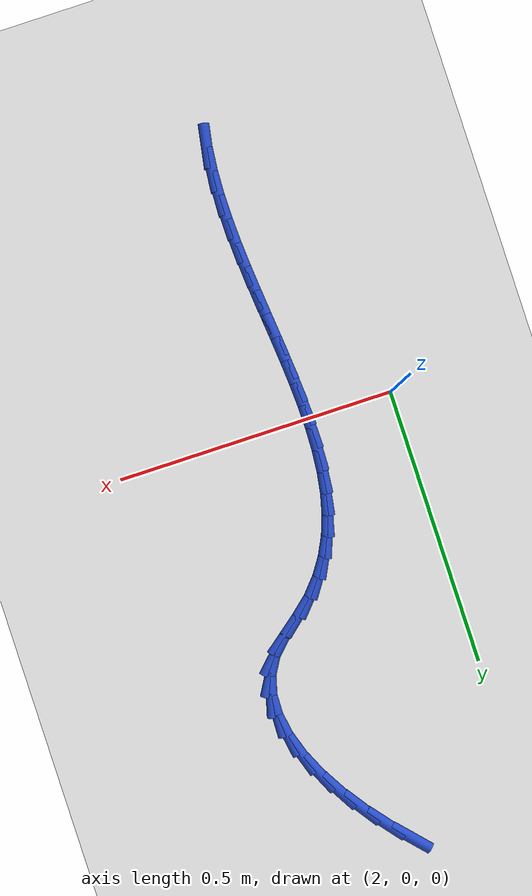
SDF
<sdf version="1.6">
 <world name="default">
  <model name="ground_plane">
   <static>1</static>
   <link name="link">
    <collision name="collision">
     <geometry><plane><normal>0 0 1</normal><size>100 100</size></plane></geometry>
     <surface><friction><ode><mu>100</mu><mu2>50</mu2></ode></friction></surface>
    </collision>
    <visual name="visual">
     <cast_shadows>0</cast_shadows>
     <geometry><plane><normal>0 0 1</normal><size>100 100</size></plane></geometry>
     <material>
      <script><uri>file://media/materials/scripts/gazebo.material</uri><name>Gazebo/WhiteGlow</name></script>
     </material>
    </visual>
   </link>
  </model>
  <model name="line">
   <link name="link_85">
    <pose>2.2092725047235064 0.756546341222975 0.01 0 1.57 -0.8277808865502475</pose>
    <collision name="collision">
     <geometry><cylinder><radius>0.01</radius><length>0.08</length></cylinder></geometry>
    </collision>
    <visual name="visual">
     <material>
      <script><name>Gazebo/Blue</name><uri>file://media/materials/scripts/gazebo.material</uri></script>
     </material>
     <geometry><cylinder><radius>0.01</radius><length>0.08</length></cylinder></geometry>
    </visual>
   </link>
   <link name="link_86">
    <pose>2.243832664617129 0.7189251040761271 0.01 0 1.57 -0.8912576350863156</pose>
    <collision name="collision">
     <geometry><cylinder><radius>0.01</radius><length>0.08</length></cylinder></geometry>
    </collision>
    <visual name="visual">
     <material>
      <script><name>Gazebo/Blue</name><uri>file://media/materials/scripts/gazebo.material</uri></script>
     </material>
     <geometry><cylinder><radius>0.01</radius><length>0.08</length></cylinder></geometry>
    </visual>
   </link>
   <link name="link_87">
    <pose>2.275601329192552 0.6796025193183581 0.01 0 1.57 -0.9612634005826799</pose>
    <collision name="collision">
     <geometry><cylinder><radius>0.01</radius><length>0.08</length></cylinder></geometry>
    </collision>
    <visual name="visual">
     <material>
      <script><name>Gazebo/Blue</name><uri>file://media/materials/scripts/gazebo.material</uri></script>
     </material>
     <geometry><cylinder><radius>0.01</radius><length>0.08</length></cylinder></geometry>
    </visual>
   </link>
   <link name="link_88">
    <pose>2.3038162476772017 0.6391929597491826 0.01 0 1.57 -1.0417917243754642</pose>
    <collision name="collision">
     <geometry><cylinder><radius>0.01</radius><length>0.08</length></cylinder></geometry>
    </collision>
    <visual name="visual">
     <material>
      <script><name>Gazebo/Blue</name><uri>file://media/materials/scripts/gazebo.material</uri></script>
     </material>
     <geometry><cylinder><radius>0.01</radius><length>0.08</length></cylinder></geometry>
    </visual>
   </link>
   <link name="link_89">
    <pose>2.327715169298507 0.5983107981681148 0.01 0 1.57 -1.1380361781038197</pose>
    <collision name="collision">
     <geometry><cylinder><radius>0.01</radius><length>0.08</length></cylinder></geometry>
    </collision>
    <visual name="visual">
     <material>
      <script><name>Gazebo/Blue</name><uri>file://media/materials/scripts/gazebo.material</uri></script>
     </material>
     <geometry><cylinder><radius>0.01</radius><length>0.08</length></cylinder></geometry>
    </visual>
   </link>
   <link name="link_90">
    <pose>2.3465358432838954 0.5575704073746695 0.01 0 1.57 -1.2568970935866333</pose>
    <collision name="collision">
     <geometry><cylinder><radius>0.01</radius><length>0.08</length></cylinder></geometry>
    </collision>
    <visual name="visual">
     <material>
      <script><name>Gazebo/Blue</name><uri>file://media/materials/scripts/gazebo.material</uri></script>
     </material>
     <geometry><cylinder><radius>0.01</radius><length>0.08</length></cylinder></geometry>
    </visual>
   </link>
   <link name="link_91">
    <pose>2.359516018860796 0.5175861601683609 0.01 0 1.57 -1.4071143908361616</pose>
    <collision name="collision">
     <geometry><cylinder><radius>0.01</radius><length>0.08</length></cylinder></geometry>
    </collision>
    <visual name="visual">
     <material>
      <script><name>Gazebo/Blue</name><uri>file://media/materials/scripts/gazebo.material</uri></script>
     </material>
     <geometry><cylinder><radius>0.01</radius><length>0.08</length></cylinder></geometry>
    </visual>
   </link>
   <link name="link_92">
    <pose>2.365893445256634 0.4789724293487031 0.01 0 1.57 1.5438412193123203</pose>
    <collision name="collision">
     <geometry><cylinder><radius>0.01</radius><length>0.08</length></cylinder></geometry>
    </collision>
    <visual name="visual">
     <material>
      <script><name>Gazebo/Blue</name><uri>file://media/materials/scripts/gazebo.material</uri></script>
     </material>
     <geometry><cylinder><radius>0.01</radius><length>0.08</length></cylinder></geometry>
    </visual>
   </link>
   <link name="link_93">
    <pose>2.3649058716988405 0.44234358771521115 0.01 0 1.57 1.309089451378396</pose>
    <collision name="collision">
     <geometry><cylinder><radius>0.01</radius><length>0.08</length></cylinder></geometry>
    </collision>
    <visual name="visual">
     <material>
      <script><name>Gazebo/Blue</name><uri>file://media/materials/scripts/gazebo.material</uri></script>
     </material>
     <geometry><cylinder><radius>0.01</radius><length>0.08</length></cylinder></geometry>
    </visual>
   </link>
   <link name="link_94">
    <pose>2.3557910474148414 0.40831400806739904 0.01 0 1.57 1.042035552301569</pose>
    <collision name="collision">
     <geometry><cylinder><radius>0.01</radius><length>0.08</length></cylinder></geometry>
    </collision>
    <visual name="visual">
     <material>
      <script><name>Gazebo/Blue</name><uri>file://media/materials/scripts/gazebo.material</uri></script>
     </material>
     <geometry><cylinder><radius>0.01</radius><length>0.08</length></cylinder></geometry>
    </visual>
   </link>
   <link name="link_95">
    <pose>2.3377867216320642 0.3774980632047813 0.01 0 1.57 0.784057095014284</pose>
    <collision name="collision">
     <geometry><cylinder><radius>0.01</radius><length>0.08</length></cylinder></geometry>
    </collision>
    <visual name="visual">
     <material>
      <script><name>Gazebo/Blue</name><uri>file://media/materials/scripts/gazebo.material</uri></script>
     </material>
     <geometry><cylinder><radius>0.01</radius><length>0.08</length></cylinder></geometry>
    </visual>
   </link>
   <link name="link_96">
    <pose>2.3105359888805364 0.35032032280150327 0.01 0 1.57 0.6648780380383147</pose>
    <collision name="collision">
     <geometry><cylinder><radius>0.01</radius><length>0.08</length></cylinder></geometry>
    </collision>
    <visual name="visual">
     <material>
      <script><name>Gazebo/Blue</name><uri>file://media/materials/scripts/gazebo.material</uri></script>
     </material>
     <geometry><cylinder><radius>0.01</radius><length>0.08</length></cylinder></geometry>
    </visual>
   </link>
   <link name="link_97">
    <pose>2.2782952569935073 0.3250451704443196 0.01 0 1.57 0.7163320596673152</pose>
    <collision name="collision">
     <geometry><cylinder><radius>0.01</radius><length>0.08</length></cylinder></geometry>
    </collision>
    <visual name="visual">
     <material>
      <script><name>Gazebo/Blue</name><uri>file://media/materials/scripts/gazebo.material</uri></script>
     </material>
     <geometry><cylinder><radius>0.01</radius><length>0.08</length></cylinder></geometry>
    </visual>
   </link>
   <link name="link_98">
    <pose>2.2480026424598085 0.2986724449359312 0.01 0 1.57 0.8475988665674283</pose>
    <collision name="collision">
     <geometry><cylinder><radius>0.01</radius><length>0.08</length></cylinder></geometry>
    </collision>
    <visual name="visual">
     <material>
      <script><name>Gazebo/Blue</name><uri>file://media/materials/scripts/gazebo.material</uri></script>
     </material>
     <geometry><cylinder><radius>0.01</radius><length>0.08</length></cylinder></geometry>
    </visual>
   </link>
   <link name="link_99">
    <pose>2.222621716809235 0.26992003886078086 0.01 0 1.57 0.9806538299596128</pose>
    <collision name="collision">
     <geometry><cylinder><radius>0.01</radius><length>0.08</length></cylinder></geometry>
    </collision>
    <visual name="visual">
     <material>
      <script><name>Gazebo/Blue</name><uri>file://media/materials/scripts/gazebo.material</uri></script>
     </material>
     <geometry><cylinder><radius>0.01</radius><length>0.08</length></cylinder></geometry>
    </visual>
   </link>
   <link name="link_100">
    <pose>2.2018565160163845 0.2389161905952225 0.01 0 1.57 1.1072427149755664</pose>
    <collision name="collision">
     <geometry><cylinder><radius>0.01</radius><length>0.08</length></cylinder></geometry>
    </collision>
    <visual name="visual">
     <material>
      <script><name>Gazebo/Blue</name><uri>file://media/materials/scripts/gazebo.material</uri></script>
     </material>
     <geometry><cylinder><radius>0.01</radius><length>0.08</length></cylinder></geometry>
    </visual>
   </link>
   <link name="link_101">
    <pose>2.1853171890013403 0.20582976185289445 0.01 0 1.57 1.222631641483331</pose>
    <collision name="collision">
     <geometry><cylinder><radius>0.01</radius><length>0.08</length></cylinder></geometry>
    </collision>
    <visual name="visual">
     <material>
      <script><name>Gazebo/Blue</name><uri>file://media/materials/scripts/gazebo.material</uri></script>
     </material>
     <geometry><cylinder><radius>0.01</radius><length>0.08</length></cylinder></geometry>
    </visual>
   </link>
   <link name="link_102">
    <pose>2.1726138846841847 0.17082961434743502 0.01 0 1.57 1.3240029484810456</pose>
    <collision name="collision">
     <geometry><cylinder><radius>0.01</radius><length>0.08</length></cylinder></geometry>
    </collision>
    <visual name="visual">
     <material>
      <script><name>Gazebo/Blue</name><uri>file://media/materials/scripts/gazebo.material</uri></script>
     </material>
     <geometry><cylinder><radius>0.01</radius><length>0.08</length></cylinder></geometry>
    </visual>
   </link>
   <link name="link_103">
    <pose>2.1633567519850017 0.13408460979248255 0.01 0 1.57 1.4103744256603055</pose>
    <collision name="collision">
     <geometry><cylinder><radius>0.01</radius><length>0.08</length></cylinder></geometry>
    </collision>
    <visual name="visual">
     <material>
      <script><name>Gazebo/Blue</name><uri>file://media/materials/scripts/gazebo.material</uri></script>
     </material>
     <geometry><cylinder><radius>0.01</radius><length>0.08</length></cylinder></geometry>
    </visual>
   </link>
   <link name="link_104">
    <pose>2.157155939823874 0.09576360990167536 0.01 0 1.57 1.4820666964769502</pose>
    <collision name="collision">
     <geometry><cylinder><radius>0.01</radius><length>0.08</length></cylinder></geometry>
    </collision>
    <visual name="visual">
     <material>
      <script><name>Gazebo/Blue</name><uri>file://media/materials/scripts/gazebo.material</uri></script>
     </material>
     <geometry><cylinder><radius>0.01</radius><length>0.08</length></cylinder></geometry>
    </visual>
   </link>
   <link name="link_105">
    <pose>2.1536215971208854 0.05603547638865172 0.01 0 1.57 1.5401046083171068</pose>
    <collision name="collision">
     <geometry><cylinder><radius>0.01</radius><length>0.08</length></cylinder></geometry>
    </collision>
    <visual name="visual">
     <material>
      <script><name>Gazebo/Blue</name><uri>file://media/materials/scripts/gazebo.material</uri></script>
     </material>
     <geometry><cylinder><radius>0.01</radius><length>0.08</length></cylinder></geometry>
    </visual>
   </link>
   <link name="link_106">
    <pose>2.152363872796119 0.015069070967050083 0.01 0 1.57 -1.555832990988483</pose>
    <collision name="collision">
     <geometry><cylinder><radius>0.01</radius><length>0.08</length></cylinder></geometry>
    </collision>
    <visual name="visual">
     <material>
      <script><name>Gazebo/Blue</name><uri>file://media/materials/scripts/gazebo.material</uri></script>
     </material>
     <geometry><cylinder><radius>0.01</radius><length>0.08</length></cylinder></geometry>
    </visual>
   </link>
   <link name="link_107">
    <pose>2.152992915769658 -0.026966744649491316 0.01 0 1.57 -1.5213225435558957</pose>
    <collision name="collision">
     <geometry><cylinder><radius>0.01</radius><length>0.08</length></cylinder></geometry>
    </collision>
    <visual name="visual">
     <material>
      <script><name>Gazebo/Blue</name><uri>file://media/materials/scripts/gazebo.material</uri></script>
     </material>
     <geometry><cylinder><radius>0.01</radius><length>0.08</length></cylinder></geometry>
    </visual>
   </link>
   <link name="link_108">
    <pose>2.1551188749615853 -0.0699031087473341 0.01 0 1.57 -1.4968947793789886</pose>
    <collision name="collision">
     <geometry><cylinder><radius>0.01</radius><length>0.08</length></cylinder></geometry>
    </collision>
    <visual name="visual">
     <material>
      <script><name>Gazebo/Blue</name><uri>file://media/materials/scripts/gazebo.material</uri></script>
     </material>
     <geometry><cylinder><radius>0.01</radius><length>0.08</length></cylinder></geometry>
    </visual>
   </link>
   <link name="link_109">
    <pose>2.158351899291984 -0.11357115961283999 0.01 0 1.57 -1.4817231247226006</pose>
    <collision name="collision">
     <geometry><cylinder><radius>0.01</radius><length>0.08</length></cylinder></geometry>
    </collision>
    <visual name="visual">
     <material>
      <script><name>Gazebo/Blue</name><uri>file://media/materials/scripts/gazebo.material</uri></script>
     </material>
     <geometry><cylinder><radius>0.01</radius><length>0.08</length></cylinder></geometry>
    </visual>
   </link>
   <link name="link_110">
    <pose>2.1623021376809373 -0.1578020355323706 0.01 0 1.57 -1.4752313558460803</pose>
    <collision name="collision">
     <geometry><cylinder><radius>0.01</radius><length>0.08</length></cylinder></geometry>
    </collision>
    <visual name="visual">
     <material>
      <script><name>Gazebo/Blue</name><uri>file://media/materials/scripts/gazebo.material</uri></script>
     </material>
     <geometry><cylinder><radius>0.01</radius><length>0.08</length></cylinder></geometry>
    </visual>
   </link>
   <link name="link_111">
    <pose>2.166579739048529 -0.2024268747922876 0.01 0 1.57 -1.4770889945663583</pose>
    <collision name="collision">
     <geometry><cylinder><radius>0.01</radius><length>0.08</length></cylinder></geometry>
    </collision>
    <visual name="visual">
     <material>
      <script><name>Gazebo/Blue</name><uri>file://media/materials/scripts/gazebo.material</uri></script>
     </material>
     <geometry><cylinder><radius>0.01</radius><length>0.08</length></cylinder></geometry>
    </visual>
   </link>
   <link name="link_112">
    <pose>2.1707948523148417 -0.24727681567895274 0.01 0 1.57 -1.4871997108648147</pose>
    <collision name="collision">
     <geometry><cylinder><radius>0.01</radius><length>0.08</length></cylinder></geometry>
    </collision>
    <visual name="visual">
     <material>
      <script><name>Gazebo/Blue</name><uri>file://media/materials/scripts/gazebo.material</uri></script>
     </material>
     <geometry><cylinder><radius>0.01</radius><length>0.08</length></cylinder></geometry>
    </visual>
   </link>
   <link name="link_113">
    <pose>2.1745576263999595 -0.2921829964787277 0.01 0 1.57 -1.5056875079528358</pose>
    <collision name="collision">
     <geometry><cylinder><radius>0.01</radius><length>0.08</length></cylinder></geometry>
    </collision>
    <visual name="visual">
     <material>
      <script><name>Gazebo/Blue</name><uri>file://media/materials/scripts/gazebo.material</uri></script>
     </material>
     <geometry><cylinder><radius>0.01</radius><length>0.08</length></cylinder></geometry>
    </visual>
   </link>
   <link name="link_114">
    <pose>2.1774782102239643 -0.336976555477974 0.01 0 1.57 -1.5328800262931057</pose>
    <collision name="collision">
     <geometry><cylinder><radius>0.01</radius><length>0.08</length></cylinder></geometry>
    </collision>
    <visual name="visual">
     <material>
      <script><name>Gazebo/Blue</name><uri>file://media/materials/scripts/gazebo.material</uri></script>
     </material>
     <geometry><cylinder><radius>0.01</radius><length>0.08</length></cylinder></geometry>
    </visual>
   </link>
   <link name="link_115">
    <pose>2.1791667527069403 -0.38148863096305347 0.01 0 1.57 -1.5692836760023283</pose>
    <collision name="collision">
     <geometry><cylinder><radius>0.01</radius><length>0.08</length></cylinder></geometry>
    </collision>
    <visual name="visual">
     <material>
      <script><name>Gazebo/Blue</name><uri>file://media/materials/scripts/gazebo.material</uri></script>
     </material>
     <geometry><cylinder><radius>0.01</radius><length>0.08</length></cylinder></geometry>
    </visual>
   </link>
   <link name="link_116">
    <pose>2.17923340276897 -0.42555036122032674 0.01 0 1.57 1.5260522587483287</pose>
    <collision name="collision">
     <geometry><cylinder><radius>0.01</radius><length>0.08</length></cylinder></geometry>
    </collision>
    <visual name="visual">
     <material>
      <script><name>Gazebo/Blue</name><uri>file://media/materials/scripts/gazebo.material</uri></script>
     </material>
     <geometry><cylinder><radius>0.01</radius><length>0.08</length></cylinder></geometry>
    </visual>
   </link>
   <link name="link_117">
    <pose>2.1772883093301374 -0.4689928845361574 0.01 0 1.57 1.4690586784290935</pose>
    <collision name="collision">
     <geometry><cylinder><radius>0.01</radius><length>0.08</length></cylinder></geometry>
    </collision>
    <visual name="visual">
     <material>
      <script><name>Gazebo/Blue</name><uri>file://media/materials/scripts/gazebo.material</uri></script>
     </material>
     <geometry><cylinder><radius>0.01</radius><length>0.08</length></cylinder></geometry>
    </visual>
   </link>
   <link name="link_118">
    <pose>2.1729356037874106 -0.5116287976780094 0.01 0 1.57 1.3969943257691186</pose>
    <collision name="collision">
     <geometry><cylinder><radius>0.01</radius><length>0.08</length></cylinder></geometry>
    </collision>
    <visual name="visual">
     <material>
      <script><name>Gazebo/Blue</name><uri>file://media/materials/scripts/gazebo.material</uri></script>
     </material>
     <geometry><cylinder><radius>0.01</radius><length>0.08</length></cylinder></geometry>
    </visual>
   </link>
  </model>
 </world>
</sdf>
